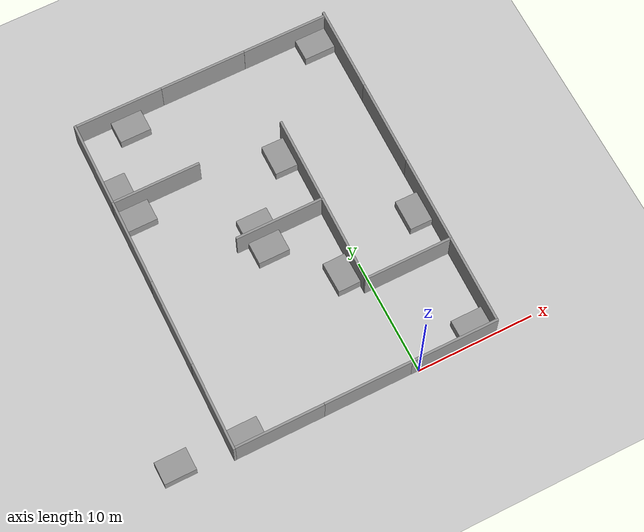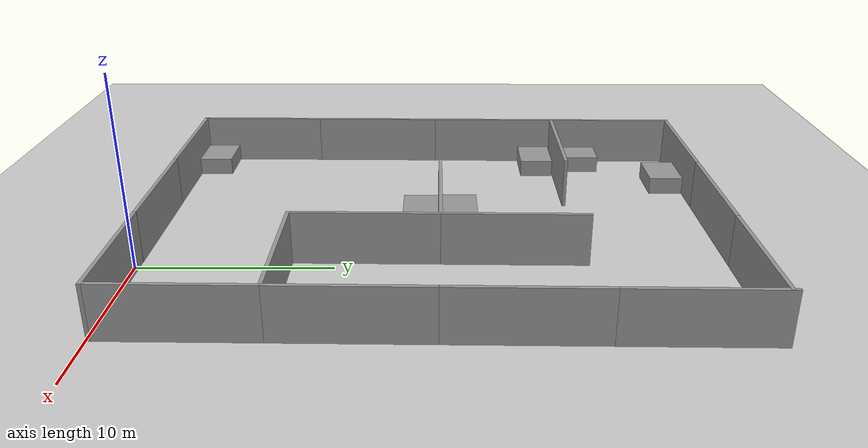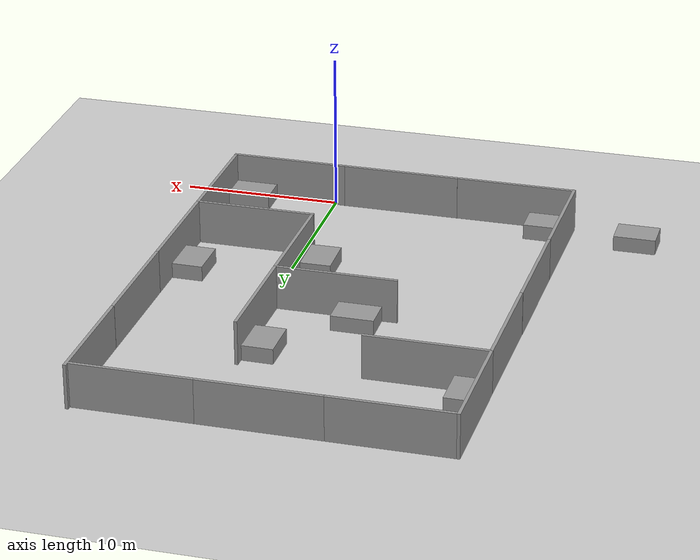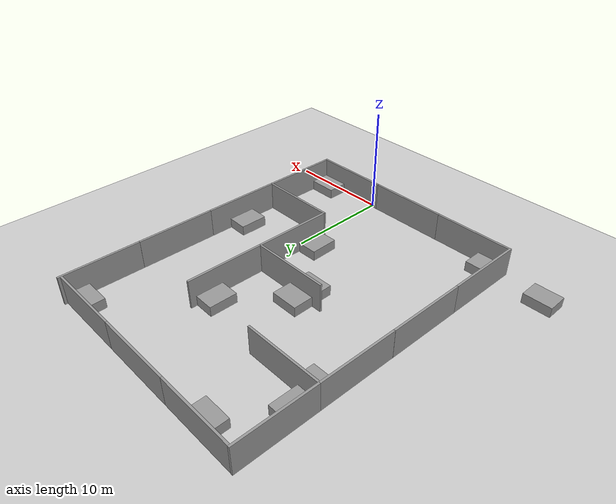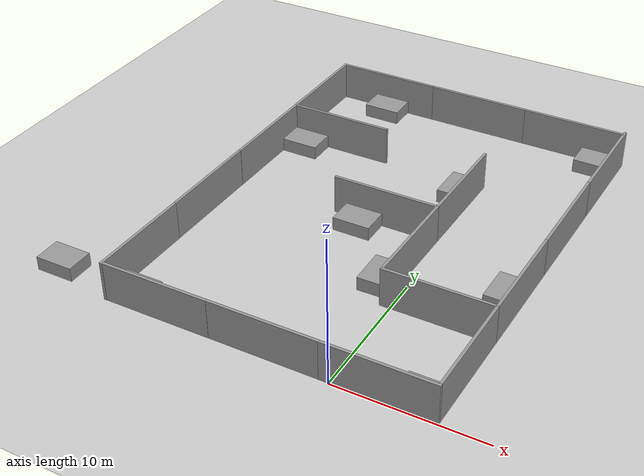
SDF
<sdf version="1.7">
 <world name="default">
  <light name="sun" type="directional">
   <pose>0 0 10 0 -0 0</pose>
   <diffuse>0.8 0.8 0.8 1</diffuse>
   <specular>0.2 0.2 0.2 1</specular>
   <attenuation>
    <range>1000</range>
    <constant>0.9</constant>
    <linear>0.01</linear>
    <quadratic>0.001</quadratic>
   </attenuation>
   <direction>-0.5 0.1 -0.9</direction>
   <spot><inner_angle>0</inner_angle><outer_angle>0</outer_angle><falloff>0</falloff></spot>
  </light>
  <model name="ground_plane">
   <static>1</static>
   <link name="link">
    <collision name="collision">
     <geometry><plane><normal>0 0 1</normal><size>100 100</size></plane></geometry>
     <surface><friction><ode><mu>100</mu><mu2>50</mu2></ode></friction></surface>
    </collision>
    <visual name="visual">
     <cast_shadows>0</cast_shadows>
     <geometry><plane><normal>0 0 1</normal><size>100 100</size></plane></geometry>
     <material>
      <script><uri>file://media/materials/scripts/gazebo.material</uri><name>Gazebo/Grey</name></script>
     </material>
    </visual>
   </link>
  </model>
  <gravity>0 0 -9.8</gravity>
  <magnetic_field>6e-06 2.3e-05 -4.2e-05</magnetic_field>
  <atmosphere type="adiabatic"/>
  <physics type="ode">
   <max_step_size>0.001</max_step_size>
   <real_time_factor>1</real_time_factor>
   <real_time_update_rate>1000</real_time_update_rate>
  </physics>
  <scene><ambient>0.4 0.4 0.4 1</ambient><background>0.7 0.7 0.7 1</background><shadows>1</shadows></scene>
  <audio><device>default</device></audio>
  <spherical_coordinates>
   <surface_model>EARTH_WGS84</surface_model>
   <latitude_deg>0</latitude_deg>
   <longitude_deg>0</longitude_deg>
   <elevation>0</elevation>
   <heading_deg>0</heading_deg>
  </spherical_coordinates>
  <model name="grey_wall">
   <static>1</static>
   <link name="link">
    <pose>0 0 1.4 0 -0 0</pose>
    <collision name="collision"><geometry><box><size>7.5 0.2 2.8</size></box></geometry></collision>
    <visual name="visual">
     <cast_shadows>0</cast_shadows>
     <geometry><box><size>7.5 0.2 2.8</size></box></geometry>
     <material>
      <script>
       <uri>model://grey_wall/materials/scripts</uri>
       <uri>model://grey_wall/materials/textures</uri>
       <name>vrc/grey_wall</name>
      </script>
     </material>
    </visual>
   </link>
   <pose>-4.4199 0.137421 0 0 -0 0</pose>
  </model>
  <model name="grey_wall_clone">
   <static>1</static>
   <link name="link">
    <pose>0 0 1.4 0 -0 0</pose>
    <collision name="collision"><geometry><box><size>7.5 0.2 2.8</size></box></geometry></collision>
    <visual name="visual">
     <cast_shadows>0</cast_shadows>
     <geometry><box><size>7.5 0.2 2.8</size></box></geometry>
     <material>
      <script>
       <uri>model://grey_wall/materials/scripts</uri>
       <uri>model://grey_wall/materials/textures</uri>
       <name>vrc/grey_wall</name>
      </script>
     </material>
    </visual>
   </link>
   <pose>-11.9164 0.129792 0 0 -0 0</pose>
  </model>
  <model name="grey_wall_clone_0">
   <static>1</static>
   <link name="link">
    <pose>0 0 1.4 0 -0 0</pose>
    <collision name="collision"><geometry><box><size>7.5 0.2 2.8</size></box></geometry></collision>
    <visual name="visual">
     <cast_shadows>0</cast_shadows>
     <geometry><box><size>7.5 0.2 2.8</size></box></geometry>
     <material>
      <script>
       <uri>model://grey_wall/materials/scripts</uri>
       <uri>model://grey_wall/materials/textures</uri>
       <name>vrc/grey_wall</name>
      </script>
     </material>
    </visual>
   </link>
   <pose>3.04882 0.13442 0 0 -0 0</pose>
  </model>
  <model name="grey_wall_clone_0_clone_clone">
   <static>1</static>
   <link name="link">
    <pose>0 0 1.4 0 -0 0</pose>
    <collision name="collision"><geometry><box><size>7.5 0.2 2.8</size></box></geometry></collision>
    <visual name="visual">
     <cast_shadows>0</cast_shadows>
     <geometry><box><size>7.5 0.2 2.8</size></box></geometry>
     <material>
      <script>
       <uri>model://grey_wall/materials/scripts</uri>
       <uri>model://grey_wall/materials/textures</uri>
       <name>vrc/grey_wall</name>
      </script>
     </material>
    </visual>
   </link>
   <pose>-15.701 3.76513 0 0 -0 1.5548</pose>
  </model>
  <model name="grey_wall_clone_0_clone_clone_0">
   <static>1</static>
   <link name="link">
    <pose>0 0 1.4 0 -0 0</pose>
    <collision name="collision"><geometry><box><size>7.5 0.2 2.8</size></box></geometry></collision>
    <visual name="visual">
     <cast_shadows>0</cast_shadows>
     <geometry><box><size>7.5 0.2 2.8</size></box></geometry>
     <material>
      <script>
       <uri>model://grey_wall/materials/scripts</uri>
       <uri>model://grey_wall/materials/textures</uri>
       <name>vrc/grey_wall</name>
      </script>
     </material>
    </visual>
   </link>
   <pose>6.76047 3.97655 0 0 -0 1.5548</pose>
  </model>
  <model name="grey_wall_clone_0_clone_clone_0_clone">
   <static>1</static>
   <link name="link">
    <pose>0 0 1.4 0 -0 0</pose>
    <collision name="collision"><geometry><box><size>7.5 0.2 2.8</size></box></geometry></collision>
    <visual name="visual">
     <cast_shadows>0</cast_shadows>
     <geometry><box><size>7.5 0.2 2.8</size></box></geometry>
     <material>
      <script>
       <uri>model://grey_wall/materials/scripts</uri>
       <uri>model://grey_wall/materials/textures</uri>
       <name>vrc/grey_wall</name>
      </script>
     </material>
    </visual>
   </link>
   <pose>6.88349 11.4565 0 0 -0 1.5548</pose>
  </model>
  <model name="grey_wall_clone_0_clone_clone_0_clone_clone">
   <static>1</static>
   <link name="link">
    <pose>0 0 1.4 0 -0 0</pose>
    <collision name="collision"><geometry><box><size>7.5 0.2 2.8</size></box></geometry></collision>
    <visual name="visual">
     <cast_shadows>0</cast_shadows>
     <geometry><box><size>7.5 0.2 2.8</size></box></geometry>
     <material>
      <script>
       <uri>model://grey_wall/materials/scripts</uri>
       <uri>model://grey_wall/materials/textures</uri>
       <name>vrc/grey_wall</name>
      </script>
     </material>
    </visual>
   </link>
   <pose>-15.5862 11.2581 0 0 -0 1.5548</pose>
  </model>
  <model name="grey_wall_clone_0_clone_clone_0_clone_clone_0">
   <static>1</static>
   <link name="link">
    <pose>0 0 1.4 0 -0 0</pose>
    <collision name="collision"><geometry><box><size>7.5 0.2 2.8</size></box></geometry></collision>
    <visual name="visual">
     <cast_shadows>0</cast_shadows>
     <geometry><box><size>7.5 0.2 2.8</size></box></geometry>
     <material>
      <script>
       <uri>model://grey_wall/materials/scripts</uri>
       <uri>model://grey_wall/materials/textures</uri>
       <name>vrc/grey_wall</name>
      </script>
     </material>
    </visual>
   </link>
   <pose>7.00326 18.9563 0 0 -0 1.5548</pose>
  </model>
  <model name="grey_wall_clone_0_clone_clone_0_clone_clone_0_clone">
   <static>1</static>
   <link name="link">
    <pose>0 0 1.4 0 -0 0</pose>
    <collision name="collision"><geometry><box><size>7.5 0.2 2.8</size></box></geometry></collision>
    <visual name="visual">
     <cast_shadows>0</cast_shadows>
     <geometry><box><size>7.5 0.2 2.8</size></box></geometry>
     <material>
      <script>
       <uri>model://grey_wall/materials/scripts</uri>
       <uri>model://grey_wall/materials/textures</uri>
       <name>vrc/grey_wall</name>
      </script>
     </material>
    </visual>
   </link>
   <pose>7.12559 26.4494 0 0 -0 1.5548</pose>
  </model>
  <model name="grey_wall_clone_0_clone_clone_0_clone_clone_clone">
   <static>1</static>
   <link name="link">
    <pose>0 0 1.4 0 -0 0</pose>
    <collision name="collision"><geometry><box><size>7.5 0.2 2.8</size></box></geometry></collision>
    <visual name="visual">
     <cast_shadows>0</cast_shadows>
     <geometry><box><size>7.5 0.2 2.8</size></box></geometry>
     <material>
      <script>
       <uri>model://grey_wall/materials/scripts</uri>
       <uri>model://grey_wall/materials/textures</uri>
       <name>vrc/grey_wall</name>
      </script>
     </material>
    </visual>
   </link>
   <pose>-15.4583 18.7426 0 0 -0 1.5548</pose>
  </model>
  <model name="grey_wall_clone_0_clone_clone_0_clone_clone_clone_0">
   <static>1</static>
   <link name="link">
    <pose>0 0 1.4 0 -0 0</pose>
    <collision name="collision"><geometry><box><size>7.5 0.2 2.8</size></box></geometry></collision>
    <visual name="visual">
     <cast_shadows>0</cast_shadows>
     <geometry><box><size>7.5 0.2 2.8</size></box></geometry>
     <material>
      <script>
       <uri>model://grey_wall/materials/scripts</uri>
       <uri>model://grey_wall/materials/textures</uri>
       <name>vrc/grey_wall</name>
      </script>
     </material>
    </visual>
   </link>
   <pose>-15.3398 26.211 0 0 -0 1.5548</pose>
  </model>
  <model name="grey_wall_clone_clone">
   <static>1</static>
   <link name="link">
    <pose>0 0 1.4 0 -0 0</pose>
    <collision name="collision"><geometry><box><size>7.5 0.2 2.8</size></box></geometry></collision>
    <visual name="visual">
     <cast_shadows>0</cast_shadows>
     <geometry><box><size>7.5 0.2 2.8</size></box></geometry>
     <material>
      <script>
       <uri>model://grey_wall/materials/scripts</uri>
       <uri>model://grey_wall/materials/textures</uri>
       <name>vrc/grey_wall</name>
      </script>
     </material>
    </visual>
   </link>
   <pose>-11.4319 29.8561 0 0 -0 0</pose>
  </model>
  <model name="grey_wall_clone_clone_clone">
   <static>1</static>
   <link name="link">
    <pose>0 0 1.4 0 -0 0</pose>
    <collision name="collision"><geometry><box><size>7.5 0.2 2.8</size></box></geometry></collision>
    <visual name="visual">
     <cast_shadows>0</cast_shadows>
     <geometry><box><size>7.5 0.2 2.8</size></box></geometry>
     <material>
      <script>
       <uri>model://grey_wall/materials/scripts</uri>
       <uri>model://grey_wall/materials/textures</uri>
       <name>vrc/grey_wall</name>
      </script>
     </material>
    </visual>
   </link>
   <pose>-3.99319 29.8565 0 0 -0 0</pose>
  </model>
  <model name="grey_wall_clone_clone_clone_clone">
   <static>1</static>
   <link name="link">
    <pose>0 0 1.4 0 -0 0</pose>
    <collision name="collision"><geometry><box><size>7.5 0.2 2.8</size></box></geometry></collision>
    <visual name="visual">
     <cast_shadows>0</cast_shadows>
     <geometry><box><size>7.5 0.2 2.8</size></box></geometry>
     <material>
      <script>
       <uri>model://grey_wall/materials/scripts</uri>
       <uri>model://grey_wall/materials/textures</uri>
       <name>vrc/grey_wall</name>
      </script>
     </material>
    </visual>
   </link>
   <pose>3.49206 29.8532 0 0 -0 0</pose>
  </model>
  <model name="grey_wall_clone_1">
   <static>1</static>
   <link name="link">
    <pose>0 0 1.4 0 -0 0</pose>
    <collision name="collision"><geometry><box><size>7.5 0.2 2.8</size></box></geometry></collision>
    <visual name="visual">
     <cast_shadows>0</cast_shadows>
     <geometry><box><size>7.5 0.2 2.8</size></box></geometry>
     <material>
      <script>
       <uri>model://grey_wall/materials/scripts</uri>
       <uri>model://grey_wall/materials/textures</uri>
       <name>vrc/grey_wall</name>
      </script>
     </material>
    </visual>
   </link>
   <pose>2.98801 7.71578 0 0 -0 0</pose>
  </model>
  <model name="grey_wall_clone_0_clone_clone_0_clone_clone_1">
   <static>1</static>
   <link name="link">
    <pose>0 0 1.4 0 -0 0</pose>
    <collision name="collision"><geometry><box><size>7.5 0.2 2.8</size></box></geometry></collision>
    <visual name="visual">
     <cast_shadows>0</cast_shadows>
     <geometry><box><size>7.5 0.2 2.8</size></box></geometry>
     <material>
      <script>
       <uri>model://grey_wall/materials/scripts</uri>
       <uri>model://grey_wall/materials/textures</uri>
       <name>vrc/grey_wall</name>
      </script>
     </material>
    </visual>
   </link>
   <pose>-0.6032 11.5568 0 0 -0 1.5548</pose>
  </model>
  <model name="grey_wall_clone_0_clone_clone_0_clone_clone_2">
   <static>1</static>
   <link name="link">
    <pose>0 0 1.4 0 -0 0</pose>
    <collision name="collision"><geometry><box><size>7.5 0.2 2.8</size></box></geometry></collision>
    <visual name="visual">
     <cast_shadows>0</cast_shadows>
     <geometry><box><size>7.5 0.2 2.8</size></box></geometry>
     <material>
      <script>
       <uri>model://grey_wall/materials/scripts</uri>
       <uri>model://grey_wall/materials/textures</uri>
       <name>vrc/grey_wall</name>
      </script>
     </material>
    </visual>
   </link>
   <pose>-0.482968 19.0481 0 0 -0 1.5548</pose>
  </model>
  <model name="grey_wall_clone_2">
   <static>1</static>
   <link name="link">
    <pose>0 0 1.4 0 -0 0</pose>
    <collision name="collision"><geometry><box><size>7.5 0.2 2.8</size></box></geometry></collision>
    <visual name="visual">
     <cast_shadows>0</cast_shadows>
     <geometry><box><size>7.5 0.2 2.8</size></box></geometry>
     <material>
      <script>
       <uri>model://grey_wall/materials/scripts</uri>
       <uri>model://grey_wall/materials/textures</uri>
       <name>vrc/grey_wall</name>
      </script>
     </material>
    </visual>
   </link>
   <pose>-4.35622 15.2993 0 0 -0 0</pose>
  </model>
  <model name="grey_wall_clone_2_clone">
   <static>1</static>
   <link name="link">
    <pose>0 0 1.4 0 -0 0</pose>
    <collision name="collision"><geometry><box><size>7.5 0.2 2.8</size></box></geometry></collision>
    <visual name="visual">
     <cast_shadows>0</cast_shadows>
     <geometry><box><size>7.5 0.2 2.8</size></box></geometry>
     <material>
      <script>
       <uri>model://grey_wall/materials/scripts</uri>
       <uri>model://grey_wall/materials/textures</uri>
       <name>vrc/grey_wall</name>
      </script>
     </material>
    </visual>
   </link>
   <pose>-11.5903 22.4574 0 0 -0 0</pose>
  </model>
  <model name="unit_box">
   <pose>-20.0965 1.40272 0.5 0 -0 0</pose>
   <link name="link">
    <inertial>
     <mass>1</mass>
     <inertia>
      <ixx>0.166667</ixx>
      <ixy>0</ixy>
      <ixz>0</ixz>
      <iyy>0.166667</iyy>
      <iyz>0</iyz>
      <izz>0.166667</izz>
     </inertia>
    </inertial>
    <collision name="collision"><geometry><box><size>2.67167 1.93235 0.973674</size></box></geometry></collision>
    <visual name="visual">
     <geometry><box><size>2.67167 1.93235 0.973674</size></box></geometry>
     <material>
      <script><name>Gazebo/Grey</name><uri>file://media/materials/scripts/gazebo.material</uri></script>
     </material>
    </visual>
   </link>
  </model>
  <model name="unit_box_clone">
   <pose>-14.276 1.19666 0.5 0 -0 0</pose>
   <link name="link">
    <inertial>
     <mass>1</mass>
     <inertia>
      <ixx>0.166667</ixx>
      <ixy>0</ixy>
      <ixz>0</ixz>
      <iyy>0.166667</iyy>
      <iyz>0</iyz>
      <izz>0.166667</izz>
     </inertia>
    </inertial>
    <collision name="collision"><geometry><box><size>2.67167 1.93235 0.973675</size></box></geometry></collision>
    <visual name="visual">
     <geometry><box><size>2.67167 1.93235 0.973675</size></box></geometry>
     <material>
      <script><name>Gazebo/Grey</name><uri>file://media/materials/scripts/gazebo.material</uri></script>
     </material>
    </visual>
   </link>
  </model>
  <model name="unit_box_clone_clone">
   <pose>5.25469 1.2141 0.5 0 -0 0</pose>
   <link name="link">
    <inertial>
     <mass>1</mass>
     <inertia>
      <ixx>0.166667</ixx>
      <ixy>0</ixy>
      <ixz>0</ixz>
      <iyy>0.166667</iyy>
      <iyz>0</iyz>
      <izz>0.166667</izz>
     </inertia>
    </inertial>
    <collision name="collision"><geometry><box><size>2.67167 1.93235 0.973675</size></box></geometry></collision>
    <visual name="visual">
     <geometry><box><size>2.67167 1.93235 0.973675</size></box></geometry>
     <material>
      <script><name>Gazebo/Grey</name><uri>file://media/materials/scripts/gazebo.material</uri></script>
     </material>
    </visual>
   </link>
  </model>
  <model name="unit_box_clone_0">
   <pose>-1.73937 9.62969 0.5 0 -0 1.58384</pose>
   <link name="link">
    <inertial>
     <mass>1</mass>
     <inertia>
      <ixx>0.166667</ixx>
      <ixy>0</ixy>
      <ixz>0</ixz>
      <iyy>0.166667</iyy>
      <iyz>0</iyz>
      <izz>0.166667</izz>
     </inertia>
    </inertial>
    <collision name="collision"><geometry><box><size>2.67167 1.93235 0.973675</size></box></geometry></collision>
    <visual name="visual">
     <geometry><box><size>2.67167 1.93235 0.973675</size></box></geometry>
     <material>
      <script><name>Gazebo/Grey</name><uri>file://media/materials/scripts/gazebo.material</uri></script>
     </material>
    </visual>
   </link>
  </model>
  <model name="unit_box_clone_clone_clone">
   <pose>-5.81484 14.212 0.5 0 -0 0</pose>
   <link name="link">
    <inertial>
     <mass>1</mass>
     <inertia>
      <ixx>0.166667</ixx>
      <ixy>0</ixy>
      <ixz>0</ixz>
      <iyy>0.166667</iyy>
      <iyz>0</iyz>
      <izz>0.166667</izz>
     </inertia>
    </inertial>
    <collision name="collision"><geometry><box><size>2.67167 1.93235 0.973675</size></box></geometry></collision>
    <visual name="visual">
     <geometry><box><size>2.67167 1.93235 0.973675</size></box></geometry>
     <material>
      <script><name>Gazebo/Grey</name><uri>file://media/materials/scripts/gazebo.material</uri></script>
     </material>
    </visual>
   </link>
  </model>
  <model name="unit_box_clone_clone_clone_clone">
   <pose>-5.84266 16.3768 0.5 0 -0 0</pose>
   <link name="link">
    <inertial>
     <mass>1</mass>
     <inertia>
      <ixx>0.166667</ixx>
      <ixy>0</ixy>
      <ixz>0</ixz>
      <iyy>0.166667</iyy>
      <iyz>0</iyz>
      <izz>0.166667</izz>
     </inertia>
    </inertial>
    <collision name="collision"><geometry><box><size>2.67167 1.93235 0.973675</size></box></geometry></collision>
    <visual name="visual">
     <geometry><box><size>2.67167 1.93235 0.973675</size></box></geometry>
     <material>
      <script><name>Gazebo/Grey</name><uri>file://media/materials/scripts/gazebo.material</uri></script>
     </material>
    </visual>
   </link>
  </model>
  <model name="unit_box_clone_clone_clone_clone_clone">
   <pose>-11.0515 28.7764 0.5 0 -0 0</pose>
   <link name="link">
    <inertial>
     <mass>1</mass>
     <inertia>
      <ixx>0.166667</ixx>
      <ixy>0</ixy>
      <ixz>0</ixz>
      <iyy>0.166667</iyy>
      <iyz>0</iyz>
      <izz>0.166667</izz>
     </inertia>
    </inertial>
    <collision name="collision"><geometry><box><size>2.67167 1.93235 0.973675</size></box></geometry></collision>
    <visual name="visual">
     <geometry><box><size>2.67167 1.93235 0.973675</size></box></geometry>
     <material>
      <script><name>Gazebo/Grey</name><uri>file://media/materials/scripts/gazebo.material</uri></script>
     </material>
    </visual>
   </link>
  </model>
  <model name="unit_box_clone_0_clone">
   <pose>-14.2583 23.9191 0.5 0 -0 1.55947</pose>
   <link name="link">
    <inertial>
     <mass>1</mass>
     <inertia>
      <ixx>0.166667</ixx>
      <ixy>0</ixy>
      <ixz>0</ixz>
      <iyy>0.166667</iyy>
      <iyz>0</iyz>
      <izz>0.166667</izz>
     </inertia>
    </inertial>
    <collision name="collision"><geometry><box><size>2.67167 1.93235 0.973675</size></box></geometry></collision>
    <visual name="visual">
     <geometry><box><size>2.67167 1.93235 0.973675</size></box></geometry>
     <material>
      <script><name>Gazebo/Grey</name><uri>file://media/materials/scripts/gazebo.material</uri></script>
     </material>
    </visual>
   </link>
  </model>
  <model name="unit_box_clone_clone_clone_clone_clone_0">
   <pose>-13.9603 21.3365 0.5 0 -0 0</pose>
   <link name="link">
    <inertial>
     <mass>1</mass>
     <inertia>
      <ixx>0.166667</ixx>
      <ixy>0</ixy>
      <ixz>0</ixz>
      <iyy>0.166667</iyy>
      <iyz>0</iyz>
      <izz>0.166667</izz>
     </inertia>
    </inertial>
    <collision name="collision"><geometry><box><size>2.67167 1.93235 0.973675</size></box></geometry></collision>
    <visual name="visual">
     <geometry><box><size>2.67167 1.93235 0.973675</size></box></geometry>
     <material>
      <script><name>Gazebo/Grey</name><uri>file://media/materials/scripts/gazebo.material</uri></script>
     </material>
    </visual>
   </link>
  </model>
  <model name="unit_box_clone_0_clone_clone">
   <pose>-1.53093 20.9086 0.5 0 -0 1.55947</pose>
   <link name="link">
    <inertial>
     <mass>1</mass>
     <inertia>
      <ixx>0.166667</ixx>
      <ixy>0</ixy>
      <ixz>0</ixz>
      <iyy>0.166667</iyy>
      <iyz>0</iyz>
      <izz>0.166667</izz>
     </inertia>
    </inertial>
    <collision name="collision"><geometry><box><size>2.67167 1.93235 0.973675</size></box></geometry></collision>
    <visual name="visual">
     <geometry><box><size>2.67167 1.93235 0.973675</size></box></geometry>
     <material>
      <script><name>Gazebo/Grey</name><uri>file://media/materials/scripts/gazebo.material</uri></script>
     </material>
    </visual>
   </link>
  </model>
  <model name="unit_box_clone_0_clone_clone_clone">
   <pose>5.80658 11.7553 0.5 0 -0 1.55947</pose>
   <link name="link">
    <inertial>
     <mass>1</mass>
     <inertia>
      <ixx>0.166667</ixx>
      <ixy>0</ixy>
      <ixz>0</ixz>
      <iyy>0.166667</iyy>
      <iyz>0</iyz>
      <izz>0.166667</izz>
     </inertia>
    </inertial>
    <collision name="collision"><geometry><box><size>2.67167 1.93235 0.973675</size></box></geometry></collision>
    <visual name="visual">
     <geometry><box><size>2.67167 1.93235 0.973675</size></box></geometry>
     <material>
      <script><name>Gazebo/Grey</name><uri>file://media/materials/scripts/gazebo.material</uri></script>
     </material>
    </visual>
   </link>
  </model>
  <model name="unit_box_clone_clone_clone_clone_clone_clone">
   <pose>5.69301 28.7768 0.5 0 -0 0</pose>
   <link name="link">
    <inertial>
     <mass>1</mass>
     <inertia>
      <ixx>0.166667</ixx>
      <ixy>0</ixy>
      <ixz>0</ixz>
      <iyy>0.166667</iyy>
      <iyz>0</iyz>
      <izz>0.166667</izz>
     </inertia>
    </inertial>
    <collision name="collision"><geometry><box><size>2.67167 1.93235 0.973675</size></box></geometry></collision>
    <visual name="visual">
     <geometry><box><size>2.67167 1.93235 0.973675</size></box></geometry>
     <material>
      <script><name>Gazebo/Grey</name><uri>file://media/materials/scripts/gazebo.material</uri></script>
     </material>
    </visual>
   </link>
  </model>
 </world>
</sdf>
